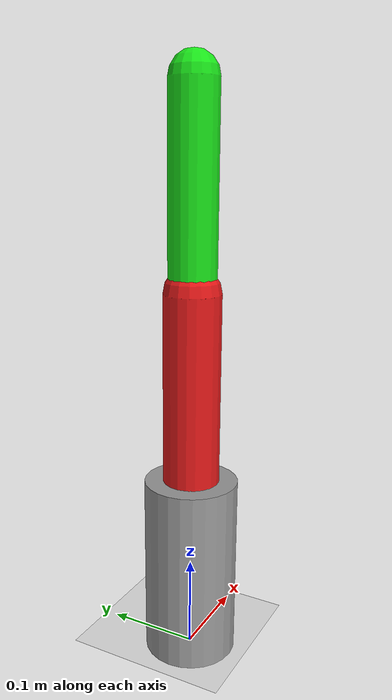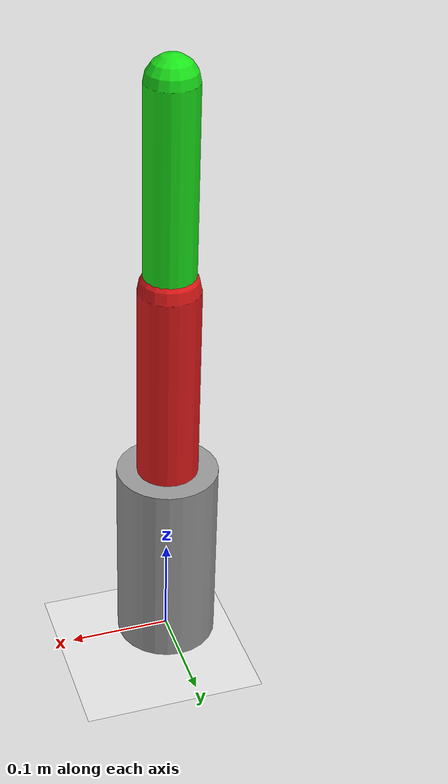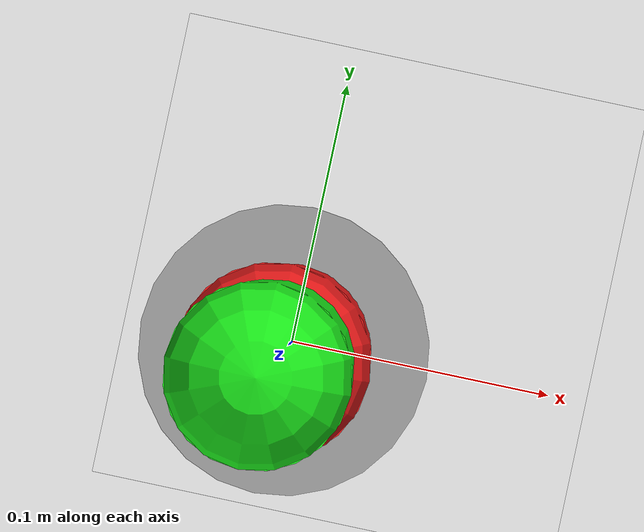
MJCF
<mujoco model="5dof_arm">
    <compiler angle="degree"/>
    <option gravity="0 0 -9.81"/>

    <worldbody>
        <!-- Base -->
		<light diffuse=".5 .5 .5" pos="0 0 10" dir="0 0 -1"/>
		<geom type="plane" size="5 5 0.1" rgba=".9 .9 .9 1"/>
        <body name="base" pos="0 0 0.1">
            <geom type="cylinder" size="0.05 0.1" rgba="0.6 0.6 0.6 1"/>

            <!-- Joint 1: rotation around z -->
            <body name="link1" pos="0 0 0.1">
                <joint name="joint1" type="hinge" axis="0 0 1" limited="true" range="-180 180"/>
                <geom type="capsule" fromto="0 0 0 0 0 0.2" size="0.03" rgba="0.9 0.1 0.1 1"/>
				  <!-- Joint 2: rotation around y -->
                <body name="link2" pos="0 0 0.2">
                    <joint name="joint2" type="hinge" axis="0 1 0" limited="true" range="-180 180"/>
                    <geom type="capsule" fromto="0 0 0 0 0 0.2" size="0.025" rgba="0.1 0.9 0.1 1"/>
				</body>
            </body>
		</body>

    </worldbody>

    <actuator>
        <position joint="joint1" kp="50"/>
		<position joint="joint2" kp="50"/>
    </actuator>
</mujoco>
